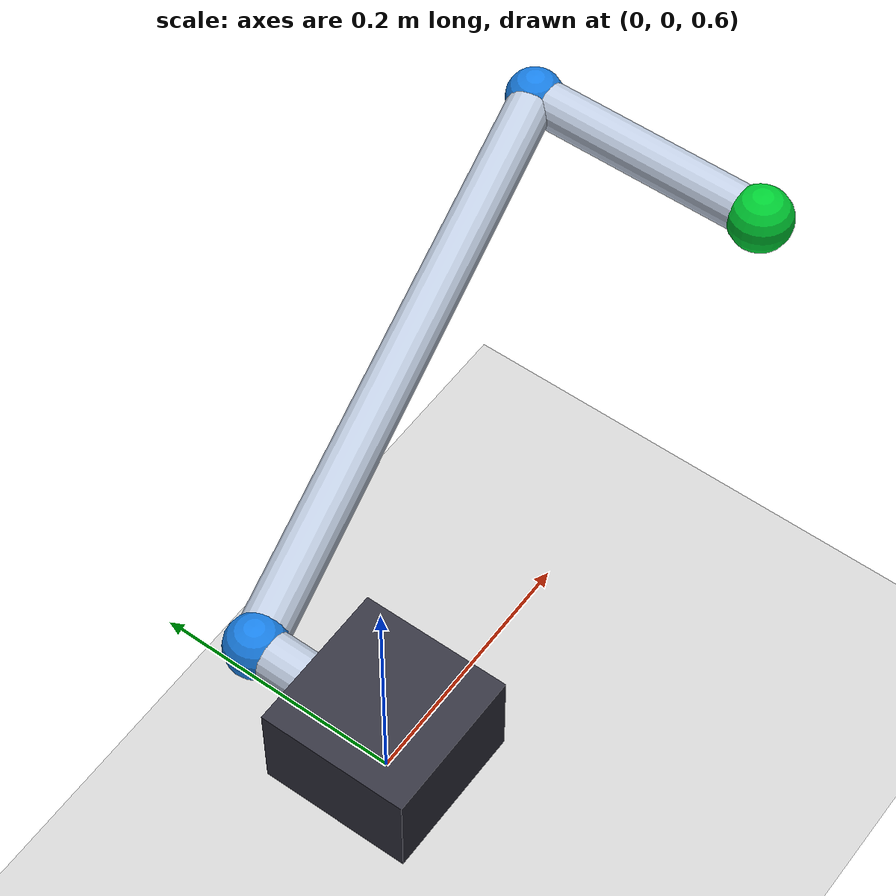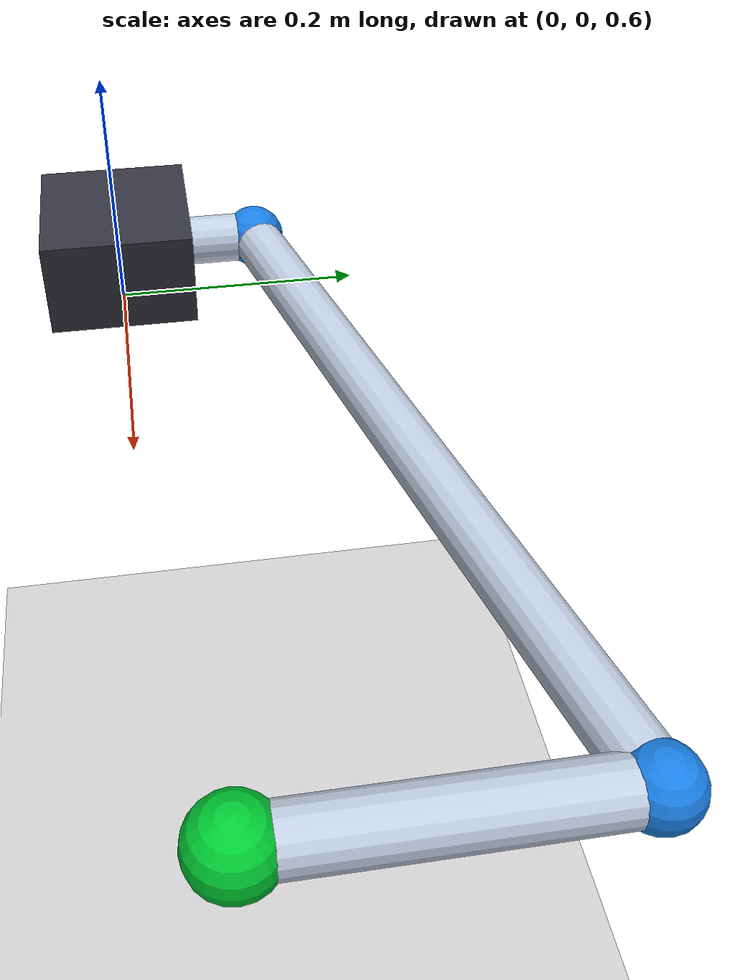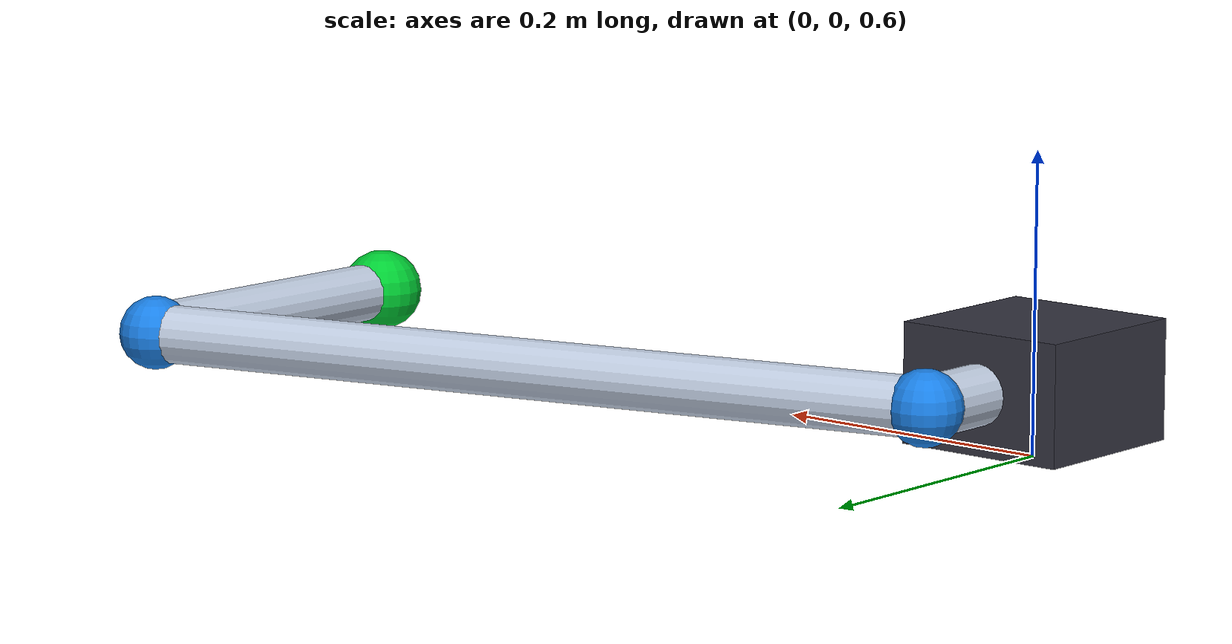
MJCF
<mujoco model="urdf_0.1.4.2_teaching_demo"><compiler angle="radian" autolimits="true" /><option timestep="0.020000" gravity="0 0 -9.81" /><visual /><asset><texture name="grid" type="2d" builtin="checker" rgb1="0.85 0.85 0.85" rgb2="0.75 0.75 0.75" width="256" height="256" /><material name="floor" texture="grid" texrepeat="4 4" reflectance="0.1" /></asset><worldbody><geom name="floor" type="plane" size="3 3 0.1" pos="0 0 0" material="floor" /><light name="main_light" pos="0 0 3" dir="0 0 -1" diffuse="1 1 1" /><camera name="overview" pos="2.2 -2.2 1.5" xyaxes="0.707 0.707 0 -0.25 0.25 0.935" /><body name="base" pos="0 0 0.650000"><geom name="base_geom" type="box" size="0.06 0.06 0.04" rgba="0.2 0.2 0.25 1" /><site name="base_site" pos="0 0 0" size="0.01" rgba="1 0.8 0 1" /><body name="Link1" pos="0.000000 0.000000 0.000000"><joint name="J1" type="hinge" axis="0.000000 1.000000 0.000000" range="-3.141590 3.141590" damping="0.3" /><geom name="Link1_joint_marker" type="sphere" size="0.025" rgba="0.1 0.5 0.9 1" /><geom name="Link1_link_geom" type="capsule" fromto="0 0 0 0.000000 0.115000 0.000000" size="0.02" rgba="0.75 0.8 0.88 1" /><site name="Link1_site" pos="0 0 0" size="0.012" rgba="0.9 0.3 0.1 1" /><body name="Link2" pos="0.000000 0.115000 0.000000"><joint name="J2" type="hinge" axis="0.000000 0.000000 -1.000000" range="-3.141590 3.141590" damping="0.3" /><geom name="Link2_joint_marker" type="sphere" size="0.025" rgba="0.1 0.5 0.9 1" /><geom name="Link2_link_geom" type="capsule" fromto="0 0 0 0.546660 0.143950 0.000000" size="0.02" rgba="0.75 0.8 0.88 1" /><site name="Link2_site" pos="0 0 0" size="0.012" rgba="0.9 0.3 0.1 1" /><body name="Link3" pos="0.546660 0.143950 0.000000"><joint name="J3" type="hinge" axis="0.000000 0.000000 1.000000" range="-3.141590 3.141590" damping="0.3" /><geom name="Link3_joint_marker" type="sphere" size="0.025" rgba="0.1 0.5 0.9 1" /><geom name="Link3_link_geom" type="capsule" fromto="0 0 0 0.000000 -0.220000 0.000000" size="0.02" rgba="0.75 0.8 0.88 1" /><site name="Link3_site" pos="0 0 0" size="0.012" rgba="0.9 0.3 0.1 1" /><site name="tool_site" pos="0.000000 -0.220000 0.000000" size="0.018" rgba="0 1 0 1" /><geom name="tool_tip_geom" type="sphere" pos="0.000000 -0.220000 0.000000" size="0.028" rgba="0 0.8 0.2 1" /></body></body></body></body></worldbody><actuator><position name="J1_position" joint="J1" kp="25" /><position name="J2_position" joint="J2" kp="25" /><position name="J3_position" joint="J3" kp="25" /></actuator></mujoco>
